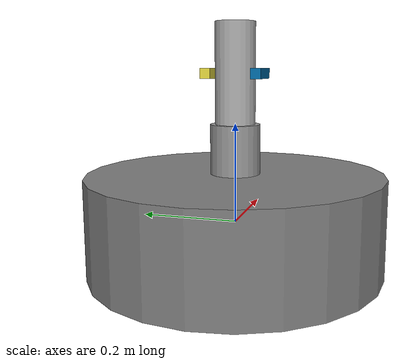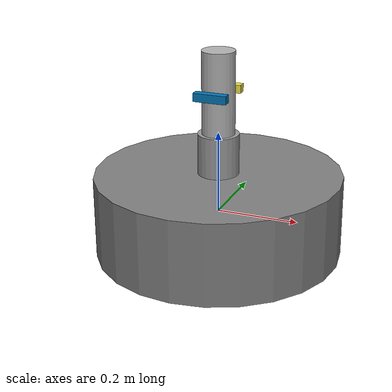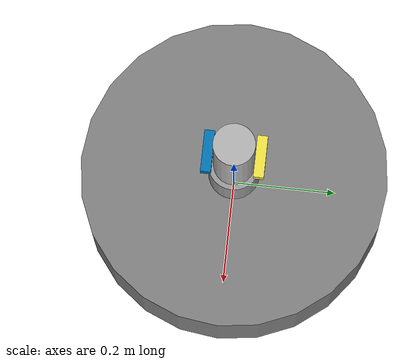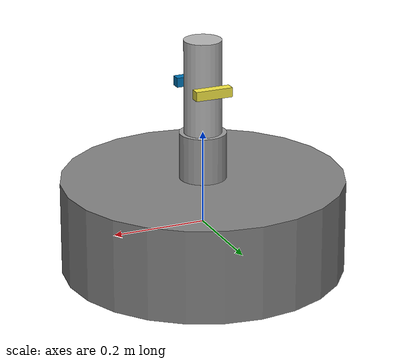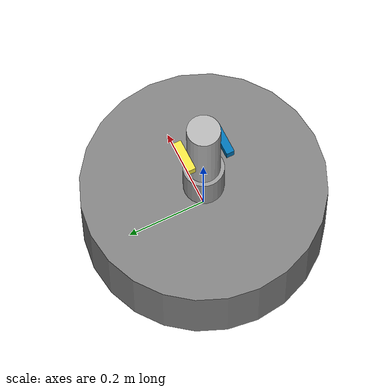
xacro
<?xml version="1.0"?>
<robot name="simple_robot_gripper_gz"
       xmlns:xacro="http://www.ros.org/wiki/xacro">

  <!-- ================= BASE ================= -->
  <link name="base_link">
    <visual>
      <geometry>
        <cylinder length="0.2" radius="0.3"/>
      </geometry>
      <material name="gray">
        <color rgba="0.5 0.5 0.5 1"/>
      </material>
    </visual>
    <collision>
      <geometry>
        <cylinder length="0.2" radius="0.3"/>
      </geometry>
    </collision>
    <inertial>
      <mass value="2.0"/>
      <inertia ixx="0.02" ixy="0.0" ixz="0.0" iyy="0.02" iyz="0.0" izz="0.02"/>
    </inertial>
  </link>

  <!-- ================= ARM LINK 1 ================= -->
  <link name="arm_link1">
    <visual>
      <geometry>
        <cylinder length="0.2" radius="0.05"/>
      </geometry>
      <material name="gray">
        <color rgba="0.6 0.6 0.6 1"/>
      </material>
    </visual>
    <collision>
      <geometry>
        <cylinder length="0.2" radius="0.05"/>
      </geometry>
    </collision>
    <inertial>
      <mass value="0.5"/>
      <inertia ixx="0.001" ixy="0.0" ixz="0.0" iyy="0.001" iyz="0.0" izz="0.001"/>
    </inertial>
  </link>

  <joint name="joint1" type="revolute">
    <parent link="base_link"/>
    <child link="arm_link1"/>
    <origin xyz="0 0 0.1" rpy="0 0 0"/>
    <axis xyz="0 0 1"/>
    <limit lower="-1.57" upper="1.57" effort="10.0" velocity="1.0"/>
  </joint>

  <!-- ================= ARM LINK 2 ================= -->
  <link name="arm_link2">
    <visual>
      <geometry>
        <cylinder length="0.2" radius="0.04"/>
      </geometry>
      <material name="gray">
        <color rgba="0.7 0.7 0.7 1"/>
      </material>
    </visual>
    <collision>
      <geometry>
        <cylinder length="0.2" radius="0.04"/>
      </geometry>
    </collision>
    <inertial>
      <mass value="0.3"/>
      <inertia ixx="0.0006" ixy="0.0" ixz="0.0" iyy="0.0006" iyz="0.0" izz="0.0006"/>
    </inertial>
  </link>

  <joint name="joint2" type="revolute">
    <parent link="arm_link1"/>
    <child link="arm_link2"/>
    <origin xyz="0 0 0.2" rpy="0 0 0"/>
    <axis xyz="0 1 0"/>
    <limit lower="-1.57" upper="1.57" effort="10.0" velocity="1.0"/>
  </joint>

  <!-- ================= GRIPPER ================= -->
  <link name="left_finger">
    <visual>
      <geometry>
        <box size="0.08 0.02 0.02"/>
      </geometry>
    </visual>
    <collision>
      <geometry>
        <box size="0.08 0.02 0.02"/>
      </geometry>
    </collision>
    <inertial>
      <mass value="0.05"/>
      <inertia ixx="0.00002" ixy="0.0" ixz="0.0" iyy="0.00002" iyz="0.0" izz="0.00002"/>
    </inertial>
  </link>

  <link name="right_finger">
    <visual>
      <geometry>
        <box size="0.08 0.02 0.02"/>
      </geometry>
    </visual>
    <collision>
      <geometry>
        <box size="0.08 0.02 0.02"/>
      </geometry>
    </collision>
    <inertial>
      <mass value="0.05"/>
      <inertia ixx="0.00002" ixy="0.0" ixz="0.0" iyy="0.00002" iyz="0.0" izz="0.00002"/>
    </inertial>
  </link>

  <joint name="left_finger_joint" type="prismatic">
    <parent link="arm_link2"/>
    <child link="left_finger"/>
    <origin xyz="0 0.05 0" rpy="0 0 0"/>
    <axis xyz="1 0 0"/>
    <limit lower="0.0" upper="0.04" effort="5.0" velocity="0.2"/>
  </joint>

  <joint name="right_finger_joint" type="prismatic">
    <parent link="arm_link2"/>
    <child link="right_finger"/>
    <origin xyz="0 -0.05 0" rpy="0 0 0"/>
    <axis xyz="1 0 0"/>
    <limit lower="0.0" upper="0.04" effort="5.0" velocity="0.2"/>
  </joint>

  <ros2_control name="SimpleSystem" type="system">
    <hardware>
      <plugin>gz_ros2_control/GazeboSimSystem</plugin>
    </hardware>

    <joint name="joint1">
      <command_interface name="position"/>
      <state_interface name="position"/>
    </joint>

    <joint name="joint2">
      <command_interface name="position"/>
      <state_interface name="position"/>
    </joint>

    <joint name="left_finger_joint">
      <command_interface name="position"/>
      <state_interface name="position"/>
    </joint>

    <joint name="right_finger_joint">
      <command_interface name="position"/>
      <state_interface name="position"/>
    </joint>
  </ros2_control>
  <gazebo>
    <plugin filename="libgz_ros2_control-system.so" name="gz_ros2_control::GazeboSimROS2ControlPlugin">
      <parameters>$(find simple_robot_gripper)/config/controllers.yaml</parameters>
    </plugin>
  </gazebo>
</robot>
